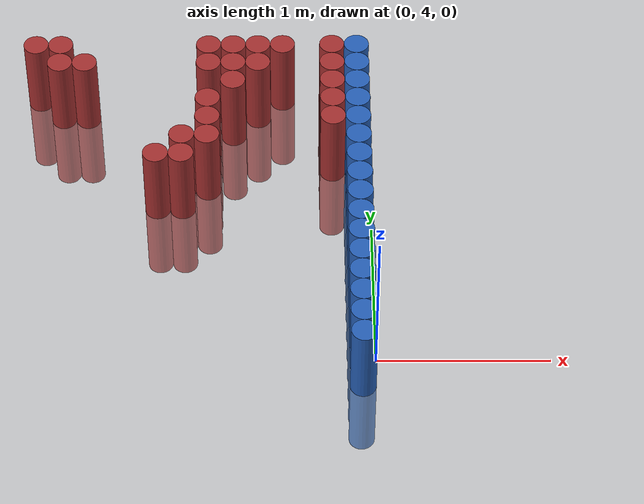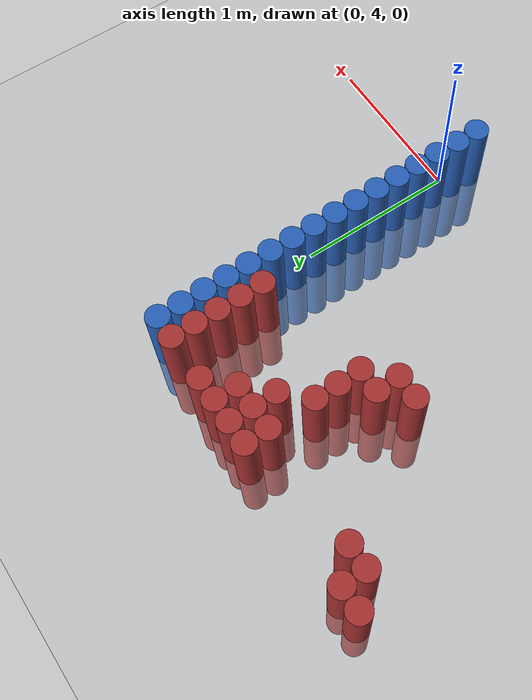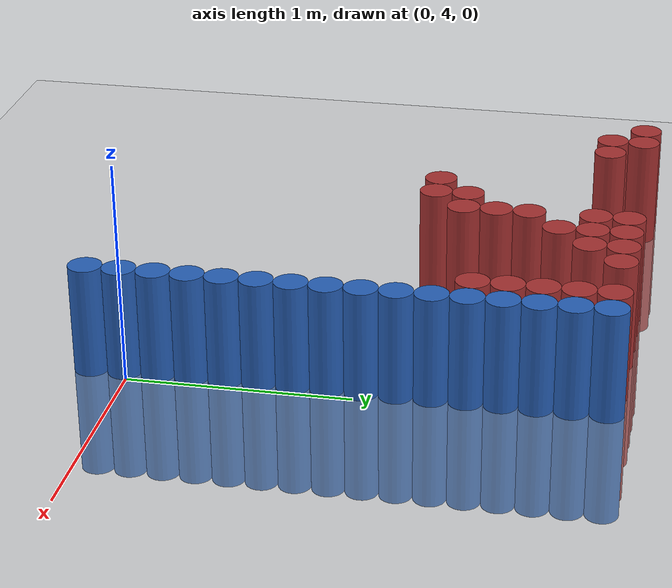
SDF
<sdf version="1.6">
 <world name="default">
  <model name="ground_plane">
   <static>1</static>
   <link name="link">
    <collision name="collision">
     <geometry><plane><normal>0 0 1</normal><size>100 100</size></plane></geometry>
     <surface><friction><ode><mu>100</mu><mu2>50</mu2></ode></friction></surface>
    </collision>
    <visual name="visual">
     <cast_shadows>0</cast_shadows>
     <geometry><plane><normal>0 0 1</normal><size>100 100</size></plane></geometry>
     <material>
      <script><uri>file://media/materials/scripts/gazebo.material</uri><name>Gazebo/Grey</name></script>
     </material>
    </visual>
   </link>
  </model>
  <model name="unit_cylinder_78">
   <static>1</static>
   <pose>-0.075000 3.825000 0.000000 0.000000 0.000000 0.000000</pose>
   <link name="link">
    <inertial>
     <mass>1</mass>
     <inertia><ixx>0.145833</ixx><ixy>0</ixy><ixz>0</ixz><iyy>0.145833</iyy><iyz>0</iyz><izz>0.125</izz></inertia>
    </inertial>
    <collision name="collision">
     <geometry><cylinder><radius>0.075000</radius><length>1</length></cylinder></geometry>
    </collision>
    <visual name="visual">
     <geometry><cylinder><radius>0.075000</radius><length>1</length></cylinder></geometry>
     <material>
      <ambient>0.152000 0.379000 0.720000 1</ambient>
      <diffuse>0.152000 0.379000 0.720000 1</diffuse>
     </material>
     <material>
      <script><name>Gazebo/Grey</name><uri>file://media/materials/scripts/gazebo.material</uri></script>
     </material>
    </visual>
    <sensor name="sensor_contact" type="contact"><contact><collision>collision</collision></contact></sensor>
   </link>
   <plugin filename="gz-sim-touchplugin-system" name="gz::sim::systems::TouchPlugin">
    <target>robot</target>
    <namespace>robot</namespace>
    <time>0.001</time>
    <enabled>true</enabled>
   </plugin>
  </model>
  <model name="unit_cylinder_80">
   <static>1</static>
   <pose>-0.075000 3.975000 0.000000 0.000000 0.000000 0.000000</pose>
   <link name="link">
    <inertial>
     <mass>1</mass>
     <inertia><ixx>0.145833</ixx><ixy>0</ixy><ixz>0</ixz><iyy>0.145833</iyy><iyz>0</iyz><izz>0.125</izz></inertia>
    </inertial>
    <collision name="collision">
     <geometry><cylinder><radius>0.075000</radius><length>1</length></cylinder></geometry>
    </collision>
    <visual name="visual">
     <geometry><cylinder><radius>0.075000</radius><length>1</length></cylinder></geometry>
     <material>
      <ambient>0.152000 0.379000 0.720000 1</ambient>
      <diffuse>0.152000 0.379000 0.720000 1</diffuse>
     </material>
     <material>
      <script><name>Gazebo/Grey</name><uri>file://media/materials/scripts/gazebo.material</uri></script>
     </material>
    </visual>
    <sensor name="sensor_contact" type="contact"><contact><collision>collision</collision></contact></sensor>
   </link>
   <plugin filename="gz-sim-touchplugin-system" name="gz::sim::systems::TouchPlugin">
    <target>robot</target>
    <namespace>robot</namespace>
    <time>0.001</time>
    <enabled>true</enabled>
   </plugin>
  </model>
  <model name="unit_cylinder_82">
   <static>1</static>
   <pose>-0.075000 4.125000 0.000000 0.000000 0.000000 0.000000</pose>
   <link name="link">
    <inertial>
     <mass>1</mass>
     <inertia><ixx>0.145833</ixx><ixy>0</ixy><ixz>0</ixz><iyy>0.145833</iyy><iyz>0</iyz><izz>0.125</izz></inertia>
    </inertial>
    <collision name="collision">
     <geometry><cylinder><radius>0.075000</radius><length>1</length></cylinder></geometry>
    </collision>
    <visual name="visual">
     <geometry><cylinder><radius>0.075000</radius><length>1</length></cylinder></geometry>
     <material>
      <ambient>0.152000 0.379000 0.720000 1</ambient>
      <diffuse>0.152000 0.379000 0.720000 1</diffuse>
     </material>
     <material>
      <script><name>Gazebo/Grey</name><uri>file://media/materials/scripts/gazebo.material</uri></script>
     </material>
    </visual>
    <sensor name="sensor_contact" type="contact"><contact><collision>collision</collision></contact></sensor>
   </link>
   <plugin filename="gz-sim-touchplugin-system" name="gz::sim::systems::TouchPlugin">
    <target>robot</target>
    <namespace>robot</namespace>
    <time>0.001</time>
    <enabled>true</enabled>
   </plugin>
  </model>
  <model name="unit_cylinder_84">
   <static>1</static>
   <pose>-0.075000 4.275000 0.000000 0.000000 0.000000 0.000000</pose>
   <link name="link">
    <inertial>
     <mass>1</mass>
     <inertia><ixx>0.145833</ixx><ixy>0</ixy><ixz>0</ixz><iyy>0.145833</iyy><iyz>0</iyz><izz>0.125</izz></inertia>
    </inertial>
    <collision name="collision">
     <geometry><cylinder><radius>0.075000</radius><length>1</length></cylinder></geometry>
    </collision>
    <visual name="visual">
     <geometry><cylinder><radius>0.075000</radius><length>1</length></cylinder></geometry>
     <material>
      <ambient>0.152000 0.379000 0.720000 1</ambient>
      <diffuse>0.152000 0.379000 0.720000 1</diffuse>
     </material>
     <material>
      <script><name>Gazebo/Grey</name><uri>file://media/materials/scripts/gazebo.material</uri></script>
     </material>
    </visual>
    <sensor name="sensor_contact" type="contact"><contact><collision>collision</collision></contact></sensor>
   </link>
   <plugin filename="gz-sim-touchplugin-system" name="gz::sim::systems::TouchPlugin">
    <target>robot</target>
    <namespace>robot</namespace>
    <time>0.001</time>
    <enabled>true</enabled>
   </plugin>
  </model>
  <model name="unit_cylinder_86">
   <static>1</static>
   <pose>-0.075000 4.425000 0.000000 0.000000 0.000000 0.000000</pose>
   <link name="link">
    <inertial>
     <mass>1</mass>
     <inertia><ixx>0.145833</ixx><ixy>0</ixy><ixz>0</ixz><iyy>0.145833</iyy><iyz>0</iyz><izz>0.125</izz></inertia>
    </inertial>
    <collision name="collision">
     <geometry><cylinder><radius>0.075000</radius><length>1</length></cylinder></geometry>
    </collision>
    <visual name="visual">
     <geometry><cylinder><radius>0.075000</radius><length>1</length></cylinder></geometry>
     <material>
      <ambient>0.152000 0.379000 0.720000 1</ambient>
      <diffuse>0.152000 0.379000 0.720000 1</diffuse>
     </material>
     <material>
      <script><name>Gazebo/Grey</name><uri>file://media/materials/scripts/gazebo.material</uri></script>
     </material>
    </visual>
    <sensor name="sensor_contact" type="contact"><contact><collision>collision</collision></contact></sensor>
   </link>
   <plugin filename="gz-sim-touchplugin-system" name="gz::sim::systems::TouchPlugin">
    <target>robot</target>
    <namespace>robot</namespace>
    <time>0.001</time>
    <enabled>true</enabled>
   </plugin>
  </model>
  <model name="unit_cylinder_88">
   <static>1</static>
   <pose>-0.075000 4.575000 0.000000 0.000000 0.000000 0.000000</pose>
   <link name="link">
    <inertial>
     <mass>1</mass>
     <inertia><ixx>0.145833</ixx><ixy>0</ixy><ixz>0</ixz><iyy>0.145833</iyy><iyz>0</iyz><izz>0.125</izz></inertia>
    </inertial>
    <collision name="collision">
     <geometry><cylinder><radius>0.075000</radius><length>1</length></cylinder></geometry>
    </collision>
    <visual name="visual">
     <geometry><cylinder><radius>0.075000</radius><length>1</length></cylinder></geometry>
     <material>
      <ambient>0.152000 0.379000 0.720000 1</ambient>
      <diffuse>0.152000 0.379000 0.720000 1</diffuse>
     </material>
     <material>
      <script><name>Gazebo/Grey</name><uri>file://media/materials/scripts/gazebo.material</uri></script>
     </material>
    </visual>
    <sensor name="sensor_contact" type="contact"><contact><collision>collision</collision></contact></sensor>
   </link>
   <plugin filename="gz-sim-touchplugin-system" name="gz::sim::systems::TouchPlugin">
    <target>robot</target>
    <namespace>robot</namespace>
    <time>0.001</time>
    <enabled>true</enabled>
   </plugin>
  </model>
  <model name="unit_cylinder_90">
   <static>1</static>
   <pose>-0.075000 4.725000 0.000000 0.000000 0.000000 0.000000</pose>
   <link name="link">
    <inertial>
     <mass>1</mass>
     <inertia><ixx>0.145833</ixx><ixy>0</ixy><ixz>0</ixz><iyy>0.145833</iyy><iyz>0</iyz><izz>0.125</izz></inertia>
    </inertial>
    <collision name="collision">
     <geometry><cylinder><radius>0.075000</radius><length>1</length></cylinder></geometry>
    </collision>
    <visual name="visual">
     <geometry><cylinder><radius>0.075000</radius><length>1</length></cylinder></geometry>
     <material>
      <ambient>0.152000 0.379000 0.720000 1</ambient>
      <diffuse>0.152000 0.379000 0.720000 1</diffuse>
     </material>
     <material>
      <script><name>Gazebo/Grey</name><uri>file://media/materials/scripts/gazebo.material</uri></script>
     </material>
    </visual>
    <sensor name="sensor_contact" type="contact"><contact><collision>collision</collision></contact></sensor>
   </link>
   <plugin filename="gz-sim-touchplugin-system" name="gz::sim::systems::TouchPlugin">
    <target>robot</target>
    <namespace>robot</namespace>
    <time>0.001</time>
    <enabled>true</enabled>
   </plugin>
  </model>
  <model name="unit_cylinder_92">
   <static>1</static>
   <pose>-0.075000 4.875000 0.000000 0.000000 0.000000 0.000000</pose>
   <link name="link">
    <inertial>
     <mass>1</mass>
     <inertia><ixx>0.145833</ixx><ixy>0</ixy><ixz>0</ixz><iyy>0.145833</iyy><iyz>0</iyz><izz>0.125</izz></inertia>
    </inertial>
    <collision name="collision">
     <geometry><cylinder><radius>0.075000</radius><length>1</length></cylinder></geometry>
    </collision>
    <visual name="visual">
     <geometry><cylinder><radius>0.075000</radius><length>1</length></cylinder></geometry>
     <material>
      <ambient>0.152000 0.379000 0.720000 1</ambient>
      <diffuse>0.152000 0.379000 0.720000 1</diffuse>
     </material>
     <material>
      <script><name>Gazebo/Grey</name><uri>file://media/materials/scripts/gazebo.material</uri></script>
     </material>
    </visual>
    <sensor name="sensor_contact" type="contact"><contact><collision>collision</collision></contact></sensor>
   </link>
   <plugin filename="gz-sim-touchplugin-system" name="gz::sim::systems::TouchPlugin">
    <target>robot</target>
    <namespace>robot</namespace>
    <time>0.001</time>
    <enabled>true</enabled>
   </plugin>
  </model>
  <model name="unit_cylinder_94">
   <static>1</static>
   <pose>-0.075000 5.025000 0.000000 0.000000 0.000000 0.000000</pose>
   <link name="link">
    <inertial>
     <mass>1</mass>
     <inertia><ixx>0.145833</ixx><ixy>0</ixy><ixz>0</ixz><iyy>0.145833</iyy><iyz>0</iyz><izz>0.125</izz></inertia>
    </inertial>
    <collision name="collision">
     <geometry><cylinder><radius>0.075000</radius><length>1</length></cylinder></geometry>
    </collision>
    <visual name="visual">
     <geometry><cylinder><radius>0.075000</radius><length>1</length></cylinder></geometry>
     <material>
      <ambient>0.152000 0.379000 0.720000 1</ambient>
      <diffuse>0.152000 0.379000 0.720000 1</diffuse>
     </material>
     <material>
      <script><name>Gazebo/Grey</name><uri>file://media/materials/scripts/gazebo.material</uri></script>
     </material>
    </visual>
    <sensor name="sensor_contact" type="contact"><contact><collision>collision</collision></contact></sensor>
   </link>
   <plugin filename="gz-sim-touchplugin-system" name="gz::sim::systems::TouchPlugin">
    <target>robot</target>
    <namespace>robot</namespace>
    <time>0.001</time>
    <enabled>true</enabled>
   </plugin>
  </model>
  <model name="unit_cylinder_209">
   <static>1</static>
   <pose>-2.025000 6.075000 0.000000 0.000000 0.000000 0.000000</pose>
   <link name="link">
    <inertial>
     <mass>1</mass>
     <inertia><ixx>0.145833</ixx><ixy>0</ixy><ixz>0</ixz><iyy>0.145833</iyy><iyz>0</iyz><izz>0.125</izz></inertia>
    </inertial>
    <collision name="collision">
     <geometry><cylinder><radius>0.075000</radius><length>1</length></cylinder></geometry>
    </collision>
    <visual name="visual">
     <geometry><cylinder><radius>0.075000</radius><length>1</length></cylinder></geometry>
     <material>
      <ambient>0.648000 0.192000 0.192000 1</ambient>
      <diffuse>0.648000 0.192000 0.192000 1</diffuse>
     </material>
     <material>
      <script><name>Gazebo/Grey</name><uri>file://media/materials/scripts/gazebo.material</uri></script>
     </material>
    </visual>
    <sensor name="sensor_contact" type="contact"><contact><collision>collision</collision></contact></sensor>
   </link>
   <plugin filename="gz-sim-touchplugin-system" name="gz::sim::systems::TouchPlugin">
    <target>robot</target>
    <namespace>robot</namespace>
    <time>0.001</time>
    <enabled>true</enabled>
   </plugin>
  </model>
  <model name="unit_cylinder_212">
   <static>1</static>
   <pose>-1.875000 5.925000 0.000000 0.000000 0.000000 0.000000</pose>
   <link name="link">
    <inertial>
     <mass>1</mass>
     <inertia><ixx>0.145833</ixx><ixy>0</ixy><ixz>0</ixz><iyy>0.145833</iyy><iyz>0</iyz><izz>0.125</izz></inertia>
    </inertial>
    <collision name="collision">
     <geometry><cylinder><radius>0.075000</radius><length>1</length></cylinder></geometry>
    </collision>
    <visual name="visual">
     <geometry><cylinder><radius>0.075000</radius><length>1</length></cylinder></geometry>
     <material>
      <ambient>0.648000 0.192000 0.192000 1</ambient>
      <diffuse>0.648000 0.192000 0.192000 1</diffuse>
     </material>
     <material>
      <script><name>Gazebo/Grey</name><uri>file://media/materials/scripts/gazebo.material</uri></script>
     </material>
    </visual>
    <sensor name="sensor_contact" type="contact"><contact><collision>collision</collision></contact></sensor>
   </link>
   <plugin filename="gz-sim-touchplugin-system" name="gz::sim::systems::TouchPlugin">
    <target>robot</target>
    <namespace>robot</namespace>
    <time>0.001</time>
    <enabled>true</enabled>
   </plugin>
  </model>
  <model name="unit_cylinder_213">
   <static>1</static>
   <pose>-1.875000 6.075000 0.000000 0.000000 0.000000 0.000000</pose>
   <link name="link">
    <inertial>
     <mass>1</mass>
     <inertia><ixx>0.145833</ixx><ixy>0</ixy><ixz>0</ixz><iyy>0.145833</iyy><iyz>0</iyz><izz>0.125</izz></inertia>
    </inertial>
    <collision name="collision">
     <geometry><cylinder><radius>0.075000</radius><length>1</length></cylinder></geometry>
    </collision>
    <visual name="visual">
     <geometry><cylinder><radius>0.075000</radius><length>1</length></cylinder></geometry>
     <material>
      <ambient>0.648000 0.192000 0.192000 1</ambient>
      <diffuse>0.648000 0.192000 0.192000 1</diffuse>
     </material>
     <material>
      <script><name>Gazebo/Grey</name><uri>file://media/materials/scripts/gazebo.material</uri></script>
     </material>
    </visual>
    <sensor name="sensor_contact" type="contact"><contact><collision>collision</collision></contact></sensor>
   </link>
   <plugin filename="gz-sim-touchplugin-system" name="gz::sim::systems::TouchPlugin">
    <target>robot</target>
    <namespace>robot</namespace>
    <time>0.001</time>
    <enabled>true</enabled>
   </plugin>
  </model>
  <model name="unit_cylinder_215">
   <static>1</static>
   <pose>-1.725000 5.925000 0.000000 0.000000 0.000000 0.000000</pose>
   <link name="link">
    <inertial>
     <mass>1</mass>
     <inertia><ixx>0.145833</ixx><ixy>0</ixy><ixz>0</ixz><iyy>0.145833</iyy><iyz>0</iyz><izz>0.125</izz></inertia>
    </inertial>
    <collision name="collision">
     <geometry><cylinder><radius>0.075000</radius><length>1</length></cylinder></geometry>
    </collision>
    <visual name="visual">
     <geometry><cylinder><radius>0.075000</radius><length>1</length></cylinder></geometry>
     <material>
      <ambient>0.648000 0.192000 0.192000 1</ambient>
      <diffuse>0.648000 0.192000 0.192000 1</diffuse>
     </material>
     <material>
      <script><name>Gazebo/Grey</name><uri>file://media/materials/scripts/gazebo.material</uri></script>
     </material>
    </visual>
    <sensor name="sensor_contact" type="contact"><contact><collision>collision</collision></contact></sensor>
   </link>
   <plugin filename="gz-sim-touchplugin-system" name="gz::sim::systems::TouchPlugin">
    <target>robot</target>
    <namespace>robot</namespace>
    <time>0.001</time>
    <enabled>true</enabled>
   </plugin>
  </model>
  <model name="unit_cylinder_238">
   <static>1</static>
   <pose>-1.275000 5.175000 0.000000 0.000000 0.000000 0.000000</pose>
   <link name="link">
    <inertial>
     <mass>1</mass>
     <inertia><ixx>0.145833</ixx><ixy>0</ixy><ixz>0</ixz><iyy>0.145833</iyy><iyz>0</iyz><izz>0.125</izz></inertia>
    </inertial>
    <collision name="collision">
     <geometry><cylinder><radius>0.075000</radius><length>1</length></cylinder></geometry>
    </collision>
    <visual name="visual">
     <geometry><cylinder><radius>0.075000</radius><length>1</length></cylinder></geometry>
     <material>
      <ambient>0.648000 0.192000 0.192000 1</ambient>
      <diffuse>0.648000 0.192000 0.192000 1</diffuse>
     </material>
     <material>
      <script><name>Gazebo/Grey</name><uri>file://media/materials/scripts/gazebo.material</uri></script>
     </material>
    </visual>
    <sensor name="sensor_contact" type="contact"><contact><collision>collision</collision></contact></sensor>
   </link>
   <plugin filename="gz-sim-touchplugin-system" name="gz::sim::systems::TouchPlugin">
    <target>robot</target>
    <namespace>robot</namespace>
    <time>0.001</time>
    <enabled>true</enabled>
   </plugin>
  </model>
  <model name="unit_cylinder_246">
   <static>1</static>
   <pose>-1.125000 5.175000 0.000000 0.000000 0.000000 0.000000</pose>
   <link name="link">
    <inertial>
     <mass>1</mass>
     <inertia><ixx>0.145833</ixx><ixy>0</ixy><ixz>0</ixz><iyy>0.145833</iyy><iyz>0</iyz><izz>0.125</izz></inertia>
    </inertial>
    <collision name="collision">
     <geometry><cylinder><radius>0.075000</radius><length>1</length></cylinder></geometry>
    </collision>
    <visual name="visual">
     <geometry><cylinder><radius>0.075000</radius><length>1</length></cylinder></geometry>
     <material>
      <ambient>0.648000 0.192000 0.192000 1</ambient>
      <diffuse>0.648000 0.192000 0.192000 1</diffuse>
     </material>
     <material>
      <script><name>Gazebo/Grey</name><uri>file://media/materials/scripts/gazebo.material</uri></script>
     </material>
    </visual>
    <sensor name="sensor_contact" type="contact"><contact><collision>collision</collision></contact></sensor>
   </link>
   <plugin filename="gz-sim-touchplugin-system" name="gz::sim::systems::TouchPlugin">
    <target>robot</target>
    <namespace>robot</namespace>
    <time>0.001</time>
    <enabled>true</enabled>
   </plugin>
  </model>
  <model name="unit_cylinder_247">
   <static>1</static>
   <pose>-1.125000 5.325000 0.000000 0.000000 0.000000 0.000000</pose>
   <link name="link">
    <inertial>
     <mass>1</mass>
     <inertia><ixx>0.145833</ixx><ixy>0</ixy><ixz>0</ixz><iyy>0.145833</iyy><iyz>0</iyz><izz>0.125</izz></inertia>
    </inertial>
    <collision name="collision">
     <geometry><cylinder><radius>0.075000</radius><length>1</length></cylinder></geometry>
    </collision>
    <visual name="visual">
     <geometry><cylinder><radius>0.075000</radius><length>1</length></cylinder></geometry>
     <material>
      <ambient>0.648000 0.192000 0.192000 1</ambient>
      <diffuse>0.648000 0.192000 0.192000 1</diffuse>
     </material>
     <material>
      <script><name>Gazebo/Grey</name><uri>file://media/materials/scripts/gazebo.material</uri></script>
     </material>
    </visual>
    <sensor name="sensor_contact" type="contact"><contact><collision>collision</collision></contact></sensor>
   </link>
   <plugin filename="gz-sim-touchplugin-system" name="gz::sim::systems::TouchPlugin">
    <target>robot</target>
    <namespace>robot</namespace>
    <time>0.001</time>
    <enabled>true</enabled>
   </plugin>
  </model>
  <model name="unit_cylinder_257">
   <static>1</static>
   <pose>-0.975000 5.325000 0.000000 0.000000 0.000000 0.000000</pose>
   <link name="link">
    <inertial>
     <mass>1</mass>
     <inertia><ixx>0.145833</ixx><ixy>0</ixy><ixz>0</ixz><iyy>0.145833</iyy><iyz>0</iyz><izz>0.125</izz></inertia>
    </inertial>
    <collision name="collision">
     <geometry><cylinder><radius>0.075000</radius><length>1</length></cylinder></geometry>
    </collision>
    <visual name="visual">
     <geometry><cylinder><radius>0.075000</radius><length>1</length></cylinder></geometry>
     <material>
      <ambient>0.648000 0.192000 0.192000 1</ambient>
      <diffuse>0.648000 0.192000 0.192000 1</diffuse>
     </material>
     <material>
      <script><name>Gazebo/Grey</name><uri>file://media/materials/scripts/gazebo.material</uri></script>
     </material>
    </visual>
    <sensor name="sensor_contact" type="contact"><contact><collision>collision</collision></contact></sensor>
   </link>
   <plugin filename="gz-sim-touchplugin-system" name="gz::sim::systems::TouchPlugin">
    <target>robot</target>
    <namespace>robot</namespace>
    <time>0.001</time>
    <enabled>true</enabled>
   </plugin>
  </model>
  <model name="unit_cylinder_258">
   <static>1</static>
   <pose>-0.975000 5.475000 0.000000 0.000000 0.000000 0.000000</pose>
   <link name="link">
    <inertial>
     <mass>1</mass>
     <inertia><ixx>0.145833</ixx><ixy>0</ixy><ixz>0</ixz><iyy>0.145833</iyy><iyz>0</iyz><izz>0.125</izz></inertia>
    </inertial>
    <collision name="collision">
     <geometry><cylinder><radius>0.075000</radius><length>1</length></cylinder></geometry>
    </collision>
    <visual name="visual">
     <geometry><cylinder><radius>0.075000</radius><length>1</length></cylinder></geometry>
     <material>
      <ambient>0.648000 0.192000 0.192000 1</ambient>
      <diffuse>0.648000 0.192000 0.192000 1</diffuse>
     </material>
     <material>
      <script><name>Gazebo/Grey</name><uri>file://media/materials/scripts/gazebo.material</uri></script>
     </material>
    </visual>
    <sensor name="sensor_contact" type="contact"><contact><collision>collision</collision></contact></sensor>
   </link>
   <plugin filename="gz-sim-touchplugin-system" name="gz::sim::systems::TouchPlugin">
    <target>robot</target>
    <namespace>robot</namespace>
    <time>0.001</time>
    <enabled>true</enabled>
   </plugin>
  </model>
  <model name="unit_cylinder_259">
   <static>1</static>
   <pose>-0.975000 5.625000 0.000000 0.000000 0.000000 0.000000</pose>
   <link name="link">
    <inertial>
     <mass>1</mass>
     <inertia><ixx>0.145833</ixx><ixy>0</ixy><ixz>0</ixz><iyy>0.145833</iyy><iyz>0</iyz><izz>0.125</izz></inertia>
    </inertial>
    <collision name="collision">
     <geometry><cylinder><radius>0.075000</radius><length>1</length></cylinder></geometry>
    </collision>
    <visual name="visual">
     <geometry><cylinder><radius>0.075000</radius><length>1</length></cylinder></geometry>
     <material>
      <ambient>0.648000 0.192000 0.192000 1</ambient>
      <diffuse>0.648000 0.192000 0.192000 1</diffuse>
     </material>
     <material>
      <script><name>Gazebo/Grey</name><uri>file://media/materials/scripts/gazebo.material</uri></script>
     </material>
    </visual>
    <sensor name="sensor_contact" type="contact"><contact><collision>collision</collision></contact></sensor>
   </link>
   <plugin filename="gz-sim-touchplugin-system" name="gz::sim::systems::TouchPlugin">
    <target>robot</target>
    <namespace>robot</namespace>
    <time>0.001</time>
    <enabled>true</enabled>
   </plugin>
  </model>
  <model name="unit_cylinder_260">
   <static>1</static>
   <pose>-0.975000 5.925000 0.000000 0.000000 0.000000 0.000000</pose>
   <link name="link">
    <inertial>
     <mass>1</mass>
     <inertia><ixx>0.145833</ixx><ixy>0</ixy><ixz>0</ixz><iyy>0.145833</iyy><iyz>0</iyz><izz>0.125</izz></inertia>
    </inertial>
    <collision name="collision">
     <geometry><cylinder><radius>0.075000</radius><length>1</length></cylinder></geometry>
    </collision>
    <visual name="visual">
     <geometry><cylinder><radius>0.075000</radius><length>1</length></cylinder></geometry>
     <material>
      <ambient>0.648000 0.192000 0.192000 1</ambient>
      <diffuse>0.648000 0.192000 0.192000 1</diffuse>
     </material>
     <material>
      <script><name>Gazebo/Grey</name><uri>file://media/materials/scripts/gazebo.material</uri></script>
     </material>
    </visual>
    <sensor name="sensor_contact" type="contact"><contact><collision>collision</collision></contact></sensor>
   </link>
   <plugin filename="gz-sim-touchplugin-system" name="gz::sim::systems::TouchPlugin">
    <target>robot</target>
    <namespace>robot</namespace>
    <time>0.001</time>
    <enabled>true</enabled>
   </plugin>
  </model>
  <model name="unit_cylinder_261">
   <static>1</static>
   <pose>-0.975000 6.075000 0.000000 0.000000 0.000000 0.000000</pose>
   <link name="link">
    <inertial>
     <mass>1</mass>
     <inertia><ixx>0.145833</ixx><ixy>0</ixy><ixz>0</ixz><iyy>0.145833</iyy><iyz>0</iyz><izz>0.125</izz></inertia>
    </inertial>
    <collision name="collision">
     <geometry><cylinder><radius>0.075000</radius><length>1</length></cylinder></geometry>
    </collision>
    <visual name="visual">
     <geometry><cylinder><radius>0.075000</radius><length>1</length></cylinder></geometry>
     <material>
      <ambient>0.648000 0.192000 0.192000 1</ambient>
      <diffuse>0.648000 0.192000 0.192000 1</diffuse>
     </material>
     <material>
      <script><name>Gazebo/Grey</name><uri>file://media/materials/scripts/gazebo.material</uri></script>
     </material>
    </visual>
    <sensor name="sensor_contact" type="contact"><contact><collision>collision</collision></contact></sensor>
   </link>
   <plugin filename="gz-sim-touchplugin-system" name="gz::sim::systems::TouchPlugin">
    <target>robot</target>
    <namespace>robot</namespace>
    <time>0.001</time>
    <enabled>true</enabled>
   </plugin>
  </model>
  <model name="unit_cylinder_271">
   <static>1</static>
   <pose>-0.825000 5.775000 0.000000 0.000000 0.000000 0.000000</pose>
   <link name="link">
    <inertial>
     <mass>1</mass>
     <inertia><ixx>0.145833</ixx><ixy>0</ixy><ixz>0</ixz><iyy>0.145833</iyy><iyz>0</iyz><izz>0.125</izz></inertia>
    </inertial>
    <collision name="collision">
     <geometry><cylinder><radius>0.075000</radius><length>1</length></cylinder></geometry>
    </collision>
    <visual name="visual">
     <geometry><cylinder><radius>0.075000</radius><length>1</length></cylinder></geometry>
     <material>
      <ambient>0.648000 0.192000 0.192000 1</ambient>
      <diffuse>0.648000 0.192000 0.192000 1</diffuse>
     </material>
     <material>
      <script><name>Gazebo/Grey</name><uri>file://media/materials/scripts/gazebo.material</uri></script>
     </material>
    </visual>
    <sensor name="sensor_contact" type="contact"><contact><collision>collision</collision></contact></sensor>
   </link>
   <plugin filename="gz-sim-touchplugin-system" name="gz::sim::systems::TouchPlugin">
    <target>robot</target>
    <namespace>robot</namespace>
    <time>0.001</time>
    <enabled>true</enabled>
   </plugin>
  </model>
  <model name="unit_cylinder_272">
   <static>1</static>
   <pose>-0.825000 5.925000 0.000000 0.000000 0.000000 0.000000</pose>
   <link name="link">
    <inertial>
     <mass>1</mass>
     <inertia><ixx>0.145833</ixx><ixy>0</ixy><ixz>0</ixz><iyy>0.145833</iyy><iyz>0</iyz><izz>0.125</izz></inertia>
    </inertial>
    <collision name="collision">
     <geometry><cylinder><radius>0.075000</radius><length>1</length></cylinder></geometry>
    </collision>
    <visual name="visual">
     <geometry><cylinder><radius>0.075000</radius><length>1</length></cylinder></geometry>
     <material>
      <ambient>0.648000 0.192000 0.192000 1</ambient>
      <diffuse>0.648000 0.192000 0.192000 1</diffuse>
     </material>
     <material>
      <script><name>Gazebo/Grey</name><uri>file://media/materials/scripts/gazebo.material</uri></script>
     </material>
    </visual>
    <sensor name="sensor_contact" type="contact"><contact><collision>collision</collision></contact></sensor>
   </link>
   <plugin filename="gz-sim-touchplugin-system" name="gz::sim::systems::TouchPlugin">
    <target>robot</target>
    <namespace>robot</namespace>
    <time>0.001</time>
    <enabled>true</enabled>
   </plugin>
  </model>
  <model name="unit_cylinder_273">
   <static>1</static>
   <pose>-0.825000 6.075000 0.000000 0.000000 0.000000 0.000000</pose>
   <link name="link">
    <inertial>
     <mass>1</mass>
     <inertia><ixx>0.145833</ixx><ixy>0</ixy><ixz>0</ixz><iyy>0.145833</iyy><iyz>0</iyz><izz>0.125</izz></inertia>
    </inertial>
    <collision name="collision">
     <geometry><cylinder><radius>0.075000</radius><length>1</length></cylinder></geometry>
    </collision>
    <visual name="visual">
     <geometry><cylinder><radius>0.075000</radius><length>1</length></cylinder></geometry>
     <material>
      <ambient>0.648000 0.192000 0.192000 1</ambient>
      <diffuse>0.648000 0.192000 0.192000 1</diffuse>
     </material>
     <material>
      <script><name>Gazebo/Grey</name><uri>file://media/materials/scripts/gazebo.material</uri></script>
     </material>
    </visual>
    <sensor name="sensor_contact" type="contact"><contact><collision>collision</collision></contact></sensor>
   </link>
   <plugin filename="gz-sim-touchplugin-system" name="gz::sim::systems::TouchPlugin">
    <target>robot</target>
    <namespace>robot</namespace>
    <time>0.001</time>
    <enabled>true</enabled>
   </plugin>
  </model>
  <model name="unit_cylinder_281">
   <static>1</static>
   <pose>-0.675000 5.925000 0.000000 0.000000 0.000000 0.000000</pose>
   <link name="link">
    <inertial>
     <mass>1</mass>
     <inertia><ixx>0.145833</ixx><ixy>0</ixy><ixz>0</ixz><iyy>0.145833</iyy><iyz>0</iyz><izz>0.125</izz></inertia>
    </inertial>
    <collision name="collision">
     <geometry><cylinder><radius>0.075000</radius><length>1</length></cylinder></geometry>
    </collision>
    <visual name="visual">
     <geometry><cylinder><radius>0.075000</radius><length>1</length></cylinder></geometry>
     <material>
      <ambient>0.648000 0.192000 0.192000 1</ambient>
      <diffuse>0.648000 0.192000 0.192000 1</diffuse>
     </material>
     <material>
      <script><name>Gazebo/Grey</name><uri>file://media/materials/scripts/gazebo.material</uri></script>
     </material>
    </visual>
    <sensor name="sensor_contact" type="contact"><contact><collision>collision</collision></contact></sensor>
   </link>
   <plugin filename="gz-sim-touchplugin-system" name="gz::sim::systems::TouchPlugin">
    <target>robot</target>
    <namespace>robot</namespace>
    <time>0.001</time>
    <enabled>true</enabled>
   </plugin>
  </model>
  <model name="unit_cylinder_282">
   <static>1</static>
   <pose>-0.675000 6.075000 0.000000 0.000000 0.000000 0.000000</pose>
   <link name="link">
    <inertial>
     <mass>1</mass>
     <inertia><ixx>0.145833</ixx><ixy>0</ixy><ixz>0</ixz><iyy>0.145833</iyy><iyz>0</iyz><izz>0.125</izz></inertia>
    </inertial>
    <collision name="collision">
     <geometry><cylinder><radius>0.075000</radius><length>1</length></cylinder></geometry>
    </collision>
    <visual name="visual">
     <geometry><cylinder><radius>0.075000</radius><length>1</length></cylinder></geometry>
     <material>
      <ambient>0.648000 0.192000 0.192000 1</ambient>
      <diffuse>0.648000 0.192000 0.192000 1</diffuse>
     </material>
     <material>
      <script><name>Gazebo/Grey</name><uri>file://media/materials/scripts/gazebo.material</uri></script>
     </material>
    </visual>
    <sensor name="sensor_contact" type="contact"><contact><collision>collision</collision></contact></sensor>
   </link>
   <plugin filename="gz-sim-touchplugin-system" name="gz::sim::systems::TouchPlugin">
    <target>robot</target>
    <namespace>robot</namespace>
    <time>0.001</time>
    <enabled>true</enabled>
   </plugin>
  </model>
  <model name="unit_cylinder_289">
   <static>1</static>
   <pose>-0.525000 6.075000 0.000000 0.000000 0.000000 0.000000</pose>
   <link name="link">
    <inertial>
     <mass>1</mass>
     <inertia><ixx>0.145833</ixx><ixy>0</ixy><ixz>0</ixz><iyy>0.145833</iyy><iyz>0</iyz><izz>0.125</izz></inertia>
    </inertial>
    <collision name="collision">
     <geometry><cylinder><radius>0.075000</radius><length>1</length></cylinder></geometry>
    </collision>
    <visual name="visual">
     <geometry><cylinder><radius>0.075000</radius><length>1</length></cylinder></geometry>
     <material>
      <ambient>0.648000 0.192000 0.192000 1</ambient>
      <diffuse>0.648000 0.192000 0.192000 1</diffuse>
     </material>
     <material>
      <script><name>Gazebo/Grey</name><uri>file://media/materials/scripts/gazebo.material</uri></script>
     </material>
    </visual>
    <sensor name="sensor_contact" type="contact"><contact><collision>collision</collision></contact></sensor>
   </link>
   <plugin filename="gz-sim-touchplugin-system" name="gz::sim::systems::TouchPlugin">
    <target>robot</target>
    <namespace>robot</namespace>
    <time>0.001</time>
    <enabled>true</enabled>
   </plugin>
  </model>
  <model name="unit_cylinder_300">
   <static>1</static>
   <pose>-0.225000 5.475000 0.000000 0.000000 0.000000 0.000000</pose>
   <link name="link">
    <inertial>
     <mass>1</mass>
     <inertia><ixx>0.145833</ixx><ixy>0</ixy><ixz>0</ixz><iyy>0.145833</iyy><iyz>0</iyz><izz>0.125</izz></inertia>
    </inertial>
    <collision name="collision">
     <geometry><cylinder><radius>0.075000</radius><length>1</length></cylinder></geometry>
    </collision>
    <visual name="visual">
     <geometry><cylinder><radius>0.075000</radius><length>1</length></cylinder></geometry>
     <material>
      <ambient>0.648000 0.192000 0.192000 1</ambient>
      <diffuse>0.648000 0.192000 0.192000 1</diffuse>
     </material>
     <material>
      <script><name>Gazebo/Grey</name><uri>file://media/materials/scripts/gazebo.material</uri></script>
     </material>
    </visual>
    <sensor name="sensor_contact" type="contact"><contact><collision>collision</collision></contact></sensor>
   </link>
   <plugin filename="gz-sim-touchplugin-system" name="gz::sim::systems::TouchPlugin">
    <target>robot</target>
    <namespace>robot</namespace>
    <time>0.001</time>
    <enabled>true</enabled>
   </plugin>
  </model>
  <model name="unit_cylinder_301">
   <static>1</static>
   <pose>-0.225000 5.625000 0.000000 0.000000 0.000000 0.000000</pose>
   <link name="link">
    <inertial>
     <mass>1</mass>
     <inertia><ixx>0.145833</ixx><ixy>0</ixy><ixz>0</ixz><iyy>0.145833</iyy><iyz>0</iyz><izz>0.125</izz></inertia>
    </inertial>
    <collision name="collision">
     <geometry><cylinder><radius>0.075000</radius><length>1</length></cylinder></geometry>
    </collision>
    <visual name="visual">
     <geometry><cylinder><radius>0.075000</radius><length>1</length></cylinder></geometry>
     <material>
      <ambient>0.648000 0.192000 0.192000 1</ambient>
      <diffuse>0.648000 0.192000 0.192000 1</diffuse>
     </material>
     <material>
      <script><name>Gazebo/Grey</name><uri>file://media/materials/scripts/gazebo.material</uri></script>
     </material>
    </visual>
    <sensor name="sensor_contact" type="contact"><contact><collision>collision</collision></contact></sensor>
   </link>
   <plugin filename="gz-sim-touchplugin-system" name="gz::sim::systems::TouchPlugin">
    <target>robot</target>
    <namespace>robot</namespace>
    <time>0.001</time>
    <enabled>true</enabled>
   </plugin>
  </model>
  <model name="unit_cylinder_302">
   <static>1</static>
   <pose>-0.225000 5.775000 0.000000 0.000000 0.000000 0.000000</pose>
   <link name="link">
    <inertial>
     <mass>1</mass>
     <inertia><ixx>0.145833</ixx><ixy>0</ixy><ixz>0</ixz><iyy>0.145833</iyy><iyz>0</iyz><izz>0.125</izz></inertia>
    </inertial>
    <collision name="collision">
     <geometry><cylinder><radius>0.075000</radius><length>1</length></cylinder></geometry>
    </collision>
    <visual name="visual">
     <geometry><cylinder><radius>0.075000</radius><length>1</length></cylinder></geometry>
     <material>
      <ambient>0.648000 0.192000 0.192000 1</ambient>
      <diffuse>0.648000 0.192000 0.192000 1</diffuse>
     </material>
     <material>
      <script><name>Gazebo/Grey</name><uri>file://media/materials/scripts/gazebo.material</uri></script>
     </material>
    </visual>
    <sensor name="sensor_contact" type="contact"><contact><collision>collision</collision></contact></sensor>
   </link>
   <plugin filename="gz-sim-touchplugin-system" name="gz::sim::systems::TouchPlugin">
    <target>robot</target>
    <namespace>robot</namespace>
    <time>0.001</time>
    <enabled>true</enabled>
   </plugin>
  </model>
  <model name="unit_cylinder_303">
   <static>1</static>
   <pose>-0.225000 5.925000 0.000000 0.000000 0.000000 0.000000</pose>
   <link name="link">
    <inertial>
     <mass>1</mass>
     <inertia><ixx>0.145833</ixx><ixy>0</ixy><ixz>0</ixz><iyy>0.145833</iyy><iyz>0</iyz><izz>0.125</izz></inertia>
    </inertial>
    <collision name="collision">
     <geometry><cylinder><radius>0.075000</radius><length>1</length></cylinder></geometry>
    </collision>
    <visual name="visual">
     <geometry><cylinder><radius>0.075000</radius><length>1</length></cylinder></geometry>
     <material>
      <ambient>0.648000 0.192000 0.192000 1</ambient>
      <diffuse>0.648000 0.192000 0.192000 1</diffuse>
     </material>
     <material>
      <script><name>Gazebo/Grey</name><uri>file://media/materials/scripts/gazebo.material</uri></script>
     </material>
    </visual>
    <sensor name="sensor_contact" type="contact"><contact><collision>collision</collision></contact></sensor>
   </link>
   <plugin filename="gz-sim-touchplugin-system" name="gz::sim::systems::TouchPlugin">
    <target>robot</target>
    <namespace>robot</namespace>
    <time>0.001</time>
    <enabled>true</enabled>
   </plugin>
  </model>
  <model name="unit_cylinder_304">
   <static>1</static>
   <pose>-0.225000 6.075000 0.000000 0.000000 0.000000 0.000000</pose>
   <link name="link">
    <inertial>
     <mass>1</mass>
     <inertia><ixx>0.145833</ixx><ixy>0</ixy><ixz>0</ixz><iyy>0.145833</iyy><iyz>0</iyz><izz>0.125</izz></inertia>
    </inertial>
    <collision name="collision">
     <geometry><cylinder><radius>0.075000</radius><length>1</length></cylinder></geometry>
    </collision>
    <visual name="visual">
     <geometry><cylinder><radius>0.075000</radius><length>1</length></cylinder></geometry>
     <material>
      <ambient>0.648000 0.192000 0.192000 1</ambient>
      <diffuse>0.648000 0.192000 0.192000 1</diffuse>
     </material>
     <material>
      <script><name>Gazebo/Grey</name><uri>file://media/materials/scripts/gazebo.material</uri></script>
     </material>
    </visual>
    <sensor name="sensor_contact" type="contact"><contact><collision>collision</collision></contact></sensor>
   </link>
   <plugin filename="gz-sim-touchplugin-system" name="gz::sim::systems::TouchPlugin">
    <target>robot</target>
    <namespace>robot</namespace>
    <time>0.001</time>
    <enabled>true</enabled>
   </plugin>
  </model>
  <model name="unit_cylinder_320">
   <static>1</static>
   <pose>-0.075000 5.175000 0.000000 0.000000 0.000000 0.000000</pose>
   <link name="link">
    <inertial>
     <mass>1</mass>
     <inertia><ixx>0.145833</ixx><ixy>0</ixy><ixz>0</ixz><iyy>0.145833</iyy><iyz>0</iyz><izz>0.125</izz></inertia>
    </inertial>
    <collision name="collision">
     <geometry><cylinder><radius>0.075000</radius><length>1</length></cylinder></geometry>
    </collision>
    <visual name="visual">
     <geometry><cylinder><radius>0.075000</radius><length>1</length></cylinder></geometry>
     <material>
      <ambient>0.152000 0.379000 0.720000 1</ambient>
      <diffuse>0.152000 0.379000 0.720000 1</diffuse>
     </material>
     <material>
      <script><name>Gazebo/Grey</name><uri>file://media/materials/scripts/gazebo.material</uri></script>
     </material>
    </visual>
    <sensor name="sensor_contact" type="contact"><contact><collision>collision</collision></contact></sensor>
   </link>
   <plugin filename="gz-sim-touchplugin-system" name="gz::sim::systems::TouchPlugin">
    <target>robot</target>
    <namespace>robot</namespace>
    <time>0.001</time>
    <enabled>true</enabled>
   </plugin>
  </model>
  <model name="unit_cylinder_321">
   <static>1</static>
   <pose>-0.075000 5.325000 0.000000 0.000000 0.000000 0.000000</pose>
   <link name="link">
    <inertial>
     <mass>1</mass>
     <inertia><ixx>0.145833</ixx><ixy>0</ixy><ixz>0</ixz><iyy>0.145833</iyy><iyz>0</iyz><izz>0.125</izz></inertia>
    </inertial>
    <collision name="collision">
     <geometry><cylinder><radius>0.075000</radius><length>1</length></cylinder></geometry>
    </collision>
    <visual name="visual">
     <geometry><cylinder><radius>0.075000</radius><length>1</length></cylinder></geometry>
     <material>
      <ambient>0.152000 0.379000 0.720000 1</ambient>
      <diffuse>0.152000 0.379000 0.720000 1</diffuse>
     </material>
     <material>
      <script><name>Gazebo/Grey</name><uri>file://media/materials/scripts/gazebo.material</uri></script>
     </material>
    </visual>
    <sensor name="sensor_contact" type="contact"><contact><collision>collision</collision></contact></sensor>
   </link>
   <plugin filename="gz-sim-touchplugin-system" name="gz::sim::systems::TouchPlugin">
    <target>robot</target>
    <namespace>robot</namespace>
    <time>0.001</time>
    <enabled>true</enabled>
   </plugin>
  </model>
  <model name="unit_cylinder_322">
   <static>1</static>
   <pose>-0.075000 5.475000 0.000000 0.000000 0.000000 0.000000</pose>
   <link name="link">
    <inertial>
     <mass>1</mass>
     <inertia><ixx>0.145833</ixx><ixy>0</ixy><ixz>0</ixz><iyy>0.145833</iyy><iyz>0</iyz><izz>0.125</izz></inertia>
    </inertial>
    <collision name="collision">
     <geometry><cylinder><radius>0.075000</radius><length>1</length></cylinder></geometry>
    </collision>
    <visual name="visual">
     <geometry><cylinder><radius>0.075000</radius><length>1</length></cylinder></geometry>
     <material>
      <ambient>0.152000 0.379000 0.720000 1</ambient>
      <diffuse>0.152000 0.379000 0.720000 1</diffuse>
     </material>
     <material>
      <script><name>Gazebo/Grey</name><uri>file://media/materials/scripts/gazebo.material</uri></script>
     </material>
    </visual>
    <sensor name="sensor_contact" type="contact"><contact><collision>collision</collision></contact></sensor>
   </link>
   <plugin filename="gz-sim-touchplugin-system" name="gz::sim::systems::TouchPlugin">
    <target>robot</target>
    <namespace>robot</namespace>
    <time>0.001</time>
    <enabled>true</enabled>
   </plugin>
  </model>
  <model name="unit_cylinder_323">
   <static>1</static>
   <pose>-0.075000 5.625000 0.000000 0.000000 0.000000 0.000000</pose>
   <link name="link">
    <inertial>
     <mass>1</mass>
     <inertia><ixx>0.145833</ixx><ixy>0</ixy><ixz>0</ixz><iyy>0.145833</iyy><iyz>0</iyz><izz>0.125</izz></inertia>
    </inertial>
    <collision name="collision">
     <geometry><cylinder><radius>0.075000</radius><length>1</length></cylinder></geometry>
    </collision>
    <visual name="visual">
     <geometry><cylinder><radius>0.075000</radius><length>1</length></cylinder></geometry>
     <material>
      <ambient>0.152000 0.379000 0.720000 1</ambient>
      <diffuse>0.152000 0.379000 0.720000 1</diffuse>
     </material>
     <material>
      <script><name>Gazebo/Grey</name><uri>file://media/materials/scripts/gazebo.material</uri></script>
     </material>
    </visual>
    <sensor name="sensor_contact" type="contact"><contact><collision>collision</collision></contact></sensor>
   </link>
   <plugin filename="gz-sim-touchplugin-system" name="gz::sim::systems::TouchPlugin">
    <target>robot</target>
    <namespace>robot</namespace>
    <time>0.001</time>
    <enabled>true</enabled>
   </plugin>
  </model>
  <model name="unit_cylinder_324">
   <static>1</static>
   <pose>-0.075000 5.775000 0.000000 0.000000 0.000000 0.000000</pose>
   <link name="link">
    <inertial>
     <mass>1</mass>
     <inertia><ixx>0.145833</ixx><ixy>0</ixy><ixz>0</ixz><iyy>0.145833</iyy><iyz>0</iyz><izz>0.125</izz></inertia>
    </inertial>
    <collision name="collision">
     <geometry><cylinder><radius>0.075000</radius><length>1</length></cylinder></geometry>
    </collision>
    <visual name="visual">
     <geometry><cylinder><radius>0.075000</radius><length>1</length></cylinder></geometry>
     <material>
      <ambient>0.152000 0.379000 0.720000 1</ambient>
      <diffuse>0.152000 0.379000 0.720000 1</diffuse>
     </material>
     <material>
      <script><name>Gazebo/Grey</name><uri>file://media/materials/scripts/gazebo.material</uri></script>
     </material>
    </visual>
    <sensor name="sensor_contact" type="contact"><contact><collision>collision</collision></contact></sensor>
   </link>
   <plugin filename="gz-sim-touchplugin-system" name="gz::sim::systems::TouchPlugin">
    <target>robot</target>
    <namespace>robot</namespace>
    <time>0.001</time>
    <enabled>true</enabled>
   </plugin>
  </model>
  <model name="unit_cylinder_325">
   <static>1</static>
   <pose>-0.075000 5.925000 0.000000 0.000000 0.000000 0.000000</pose>
   <link name="link">
    <inertial>
     <mass>1</mass>
     <inertia><ixx>0.145833</ixx><ixy>0</ixy><ixz>0</ixz><iyy>0.145833</iyy><iyz>0</iyz><izz>0.125</izz></inertia>
    </inertial>
    <collision name="collision">
     <geometry><cylinder><radius>0.075000</radius><length>1</length></cylinder></geometry>
    </collision>
    <visual name="visual">
     <geometry><cylinder><radius>0.075000</radius><length>1</length></cylinder></geometry>
     <material>
      <ambient>0.152000 0.379000 0.720000 1</ambient>
      <diffuse>0.152000 0.379000 0.720000 1</diffuse>
     </material>
     <material>
      <script><name>Gazebo/Grey</name><uri>file://media/materials/scripts/gazebo.material</uri></script>
     </material>
    </visual>
    <sensor name="sensor_contact" type="contact"><contact><collision>collision</collision></contact></sensor>
   </link>
   <plugin filename="gz-sim-touchplugin-system" name="gz::sim::systems::TouchPlugin">
    <target>robot</target>
    <namespace>robot</namespace>
    <time>0.001</time>
    <enabled>true</enabled>
   </plugin>
  </model>
  <model name="unit_cylinder_326">
   <static>1</static>
   <pose>-0.075000 6.075000 0.000000 0.000000 0.000000 0.000000</pose>
   <link name="link">
    <inertial>
     <mass>1</mass>
     <inertia><ixx>0.145833</ixx><ixy>0</ixy><ixz>0</ixz><iyy>0.145833</iyy><iyz>0</iyz><izz>0.125</izz></inertia>
    </inertial>
    <collision name="collision">
     <geometry><cylinder><radius>0.075000</radius><length>1</length></cylinder></geometry>
    </collision>
    <visual name="visual">
     <geometry><cylinder><radius>0.075000</radius><length>1</length></cylinder></geometry>
     <material>
      <ambient>0.152000 0.379000 0.720000 1</ambient>
      <diffuse>0.152000 0.379000 0.720000 1</diffuse>
     </material>
     <material>
      <script><name>Gazebo/Grey</name><uri>file://media/materials/scripts/gazebo.material</uri></script>
     </material>
    </visual>
    <sensor name="sensor_contact" type="contact"><contact><collision>collision</collision></contact></sensor>
   </link>
   <plugin filename="gz-sim-touchplugin-system" name="gz::sim::systems::TouchPlugin">
    <target>robot</target>
    <namespace>robot</namespace>
    <time>0.001</time>
    <enabled>true</enabled>
   </plugin>
  </model>
 </world>
</sdf>
